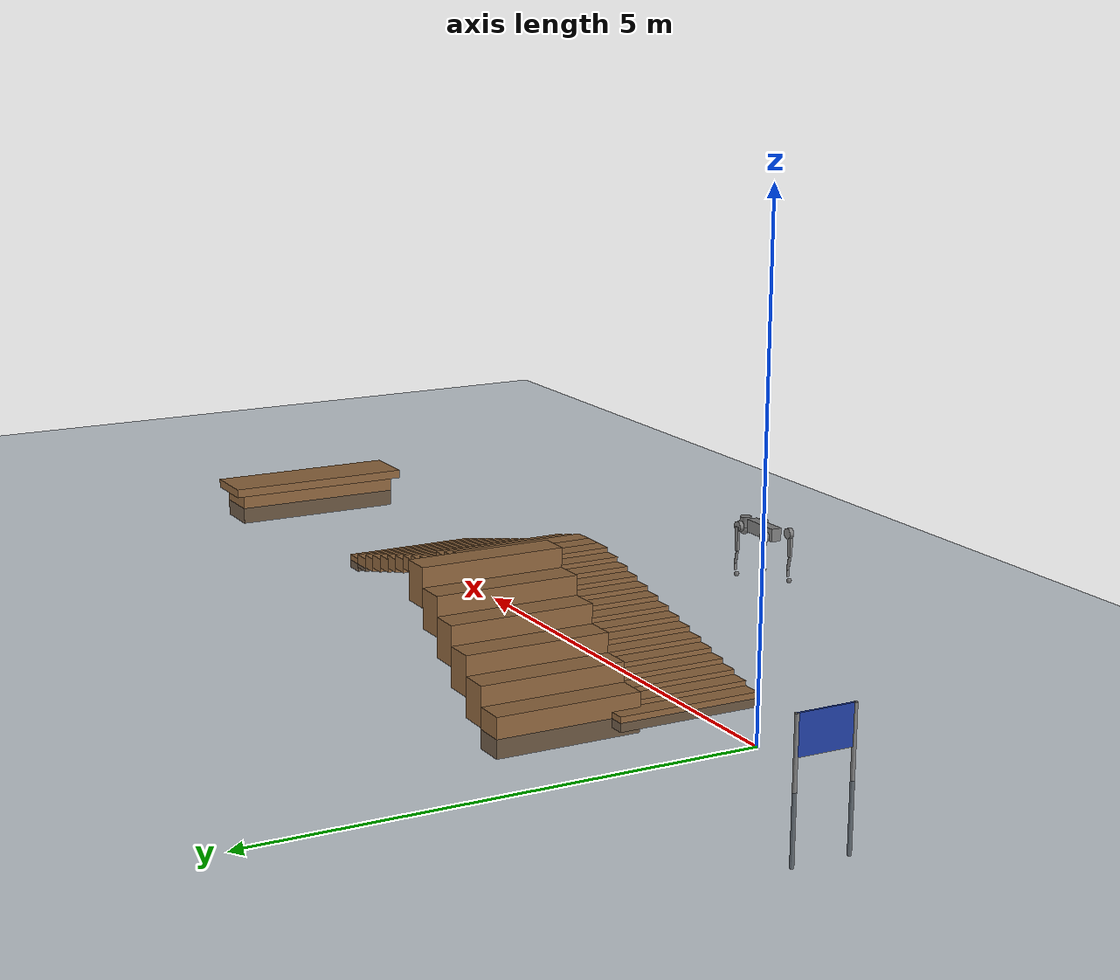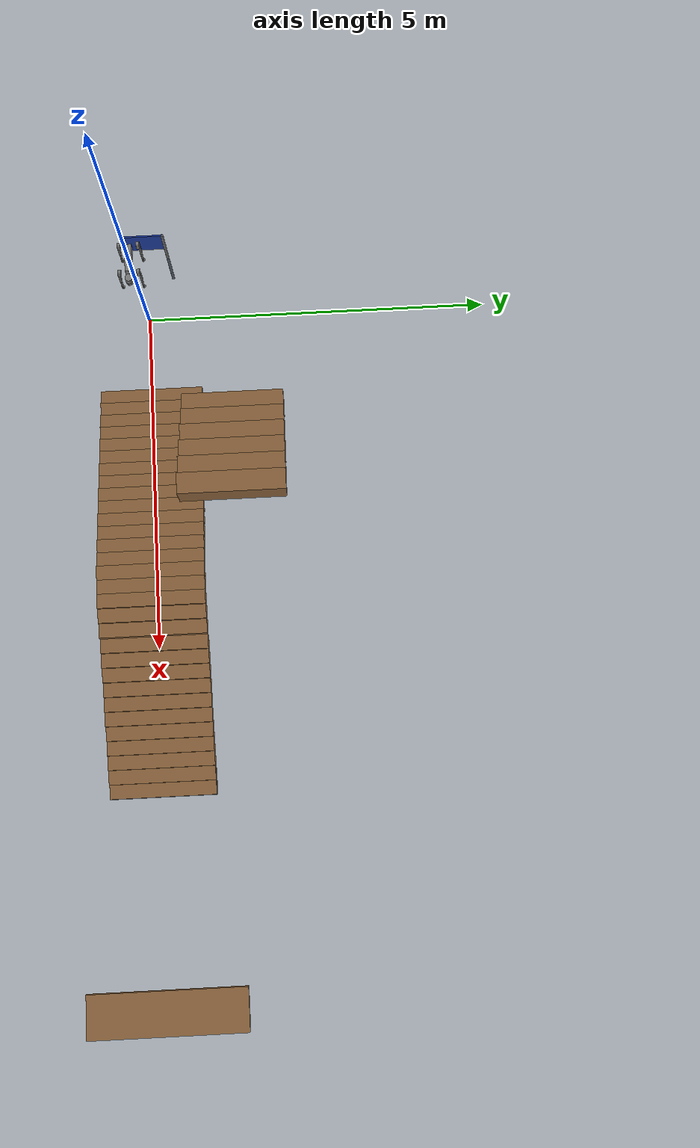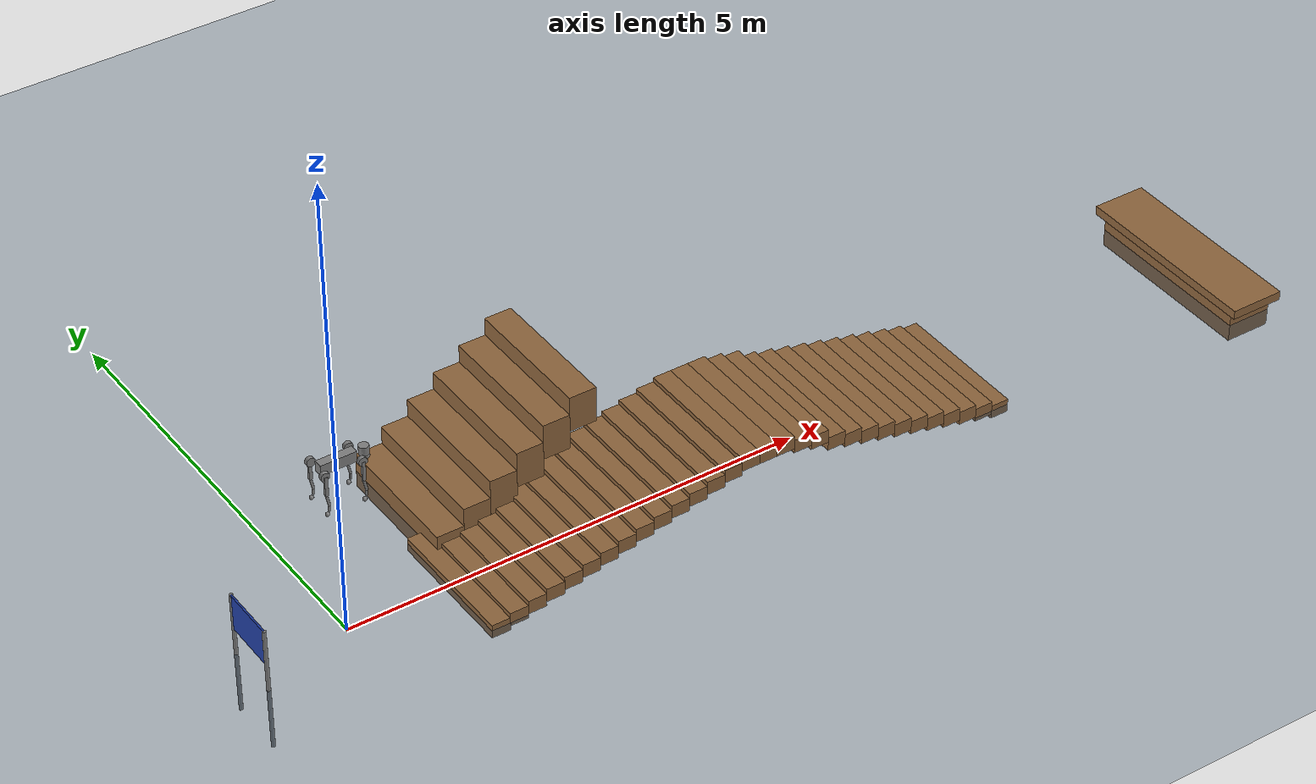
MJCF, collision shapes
<mujoco model="go2 scene">
  <include file="go2.xml" />

  <statistic center="0 0 0.1" extent="0.8" />

  <visual>
    <headlight diffuse="0.6 0.6 0.6" ambient="0.3 0.3 0.3" specular="0 0 0" />
    <rgba haze="0.15 0.25 0.35 1" />
    <global azimuth="-130" elevation="-20" />
  </visual>

  <asset>
    <texture type="skybox" builtin="gradient" rgb1="0.3 0.5 0.7" rgb2="0 0 0" width="512" height="3072" />
    <texture type="2d" name="groundplane" builtin="checker" mark="edge" rgb1="0.2 0.3 0.4" rgb2="0.1 0.2 0.3" markrgb="0.8 0.8 0.8" width="300" height="300" />
    <material name="groundplane" texture="groundplane" texuniform="true" texrepeat="5 5" reflectance="0.2" />
  <hfield name="perlin_hfield" size="5.0 5.0 0.6 0.6" file="../height_field.png" />
  <hfield name="image_hfield" size="1.0 1.0 0.02 0.1" file="../unitree_hfield.png" />
  <texture name="T_simpleWoodTable" type="cube" height="1" width="1" file="./metal1.png" />
  <material name="M_simpleWoodTable" texture="T_simpleWoodTable" rgba="0.8 0.8 0.8 1" shininess="0.2" reflectance="0.3" texuniform="false" />
  <texture name="Blue" type="cube" height="1" width="1" file="./blue.png" />
  <material name="Blue" texture="Blue" rgba="0.8 0.8 0.8 1" shininess="0.2" reflectance="0.3" texuniform="false" />

  <texture name="Wall" type="cube" height="10" width="10" file="./wall.png" />
  <material name="Wall" texture="Wall" rgba="0.8 0.8 0.8 1" shininess="0.2" reflectance="0.3" texuniform="false" />
  </asset>

  <worldbody>
    <light pos="0 0 1.5" dir="0 0 -1" directional="true" />
    <geom name="floor" size="0 0 0.05" type="plane" material="groundplane" />
    <geom pos="10.0 0.0 0.0" type="box" size="0.25 1.0 0.2" quat="1.0 0.0 0.0 0.0" material="M_simpleWoodTable" />
    <geom pos="10.0 0.0 0.2" type="box" size="0.3 1.1 0.05" quat="1.0 0.0 0.0 0.0" material="M_simpleWoodTable" />

    <geom pos="-1.0 0.0 0.5" type="box" size="0.01 0.3 0.2" quat="1.0 0.0 0.0 0.0" material="Blue" />
    <geom pos="-1.0 -0.3 0.0" type="cylinder" size="0.02 0.7 0.1" quat="1.0 0.0 0.0 0.0" />
    <geom pos="-1.0 0.3 0.0" type="cylinder" size="0.02 0.7 0.1" quat="1.0 0.0 0.0 0.0" />

  <!-- stairs diff-0.05 -->
  <geom pos="1.2 0.0 -0.025" type="box" size="0.1 0.75 0.075" quat="1.0 0.0 0.0 0.0" material="M_simpleWoodTable"/>
  <geom pos="1.4 0.0 0.025" type="box" size="0.1 0.75 0.075" quat="1.0 0.0 0.0 0.0" material="M_simpleWoodTable"/>
  <geom pos="1.6 0.0 0.075" type="box" size="0.1 0.75 0.075" quat="1.0 0.0 0.0 0.0" material="M_simpleWoodTable"/>
  <geom pos="1.8 0.0 0.125" type="box" size="0.1 0.75 0.075" quat="1.0 0.0 0.0 0.0" material="M_simpleWoodTable"/>
  <geom pos="2.0 0.0 0.175" type="box" size="0.1 0.75 0.075" quat="1.0 0.0 0.0 0.0" material="M_simpleWoodTable"/>
  <geom pos="2.2 0.0 0.225" type="box" size="0.1 0.75 0.075" quat="1.0 0.0 0.0 0.0" material="M_simpleWoodTable"/>
  <geom pos="2.4 0.0 0.275" type="box" size="0.1 0.75 0.075" quat="1.0 0.0 0.0 0.0" material="M_simpleWoodTable"/>
  <geom pos="2.6 0.0 0.325" type="box" size="0.1 0.75 0.075" quat="1.0 0.0 0.0 0.0" material="M_simpleWoodTable"/>
  <geom pos="2.8 0.0 0.375" type="box" size="0.1 0.75 0.075" quat="1.0 0.0 0.0 0.0" material="M_simpleWoodTable"/>
  <geom pos="3.0 0.0 0.425" type="box" size="0.1 0.75 0.075" quat="1.0 0.0 0.0 0.0" material="M_simpleWoodTable"/>
  <geom pos="3.2 0.0 0.475" type="box" size="0.1 0.75 0.075" quat="1.0 0.0 0.0 0.0" material="M_simpleWoodTable"/>
  <geom pos="3.4 0.0 0.525" type="box" size="0.1 0.75 0.075" quat="1.0 0.0 0.0 0.0" material="M_simpleWoodTable"/>
  <geom pos="3.6 0.0 0.575" type="box" size="0.1 0.75 0.075" quat="1.0 0.0 0.0 0.0" material="M_simpleWoodTable"/>
  <geom pos="3.8 0.0 0.625" type="box" size="0.1 0.75 0.075" quat="1.0 0.0 0.0 0.0" material="M_simpleWoodTable"/>
  <geom pos="4.0 0.0 0.675" type="box" size="0.1 0.75 0.075" quat="1.0 0.0 0.0 0.0" material="M_simpleWoodTable"/>
  <geom pos="4.2 0.0 0.675" type="box" size="0.1 0.75 0.075" quat="1.0 0.0 0.0 0.0" material="M_simpleWoodTable"/>
  <geom pos="4.4 0.0 0.675" type="box" size="0.1 0.75 0.075" quat="1.0 0.0 0.0 0.0" material="M_simpleWoodTable"/>
  <geom pos="4.6 0.0 0.625" type="box" size="0.1 0.75 0.075" quat="1.0 0.0 0.0 0.0" material="M_simpleWoodTable"/>
  <geom pos="4.8 0.0 0.575" type="box" size="0.1 0.75 0.075" quat="1.0 0.0 0.0 0.0" material="M_simpleWoodTable"/>
  <geom pos="7.0 0.0 -0.025" type="box" size="0.1 0.75 0.075" quat="1.0 0.0 0.0 0.0" material="M_simpleWoodTable"/>
  <geom pos="6.8 0.0 0.025" type="box" size="0.1 0.75 0.075" quat="1.0 0.0 0.0 0.0" material="M_simpleWoodTable"/>
  <geom pos="6.6 0.0 0.075" type="box" size="0.1 0.75 0.075" quat="1.0 0.0 0.0 0.0" material="M_simpleWoodTable"/>
  <geom pos="6.4 0.0 0.125" type="box" size="0.1 0.75 0.075" quat="1.0 0.0 0.0 0.0" material="M_simpleWoodTable"/>
  <geom pos="6.2 0.0 0.175" type="box" size="0.1 0.75 0.075" quat="1.0 0.0 0.0 0.0" material="M_simpleWoodTable"/>
  <geom pos="6.0 0.0 0.225" type="box" size="0.1 0.75 0.075" quat="1.0 0.0 0.0 0.0" material="M_simpleWoodTable"/>
  <geom pos="5.8 0.0 0.275" type="box" size="0.1 0.75 0.075" quat="1.0 0.0 0.0 0.0" material="M_simpleWoodTable"/>
  <geom pos="5.6 0.0 0.325" type="box" size="0.1 0.75 0.075" quat="1.0 0.0 0.0 0.0" material="M_simpleWoodTable"/>
  <geom pos="5.4 0.0 0.375" type="box" size="0.1 0.75 0.075" quat="1.0 0.0 0.0 0.0" material="M_simpleWoodTable"/>
  <geom pos="5.2 0.0 0.425" type="box" size="0.1 0.75 0.075" quat="1.0 0.0 0.0 0.0" material="M_simpleWoodTable"/>
  <geom pos="5.0 0.0 0.475" type="box" size="0.1 0.75 0.075" quat="1.0 0.0 0.0 0.0" material="M_simpleWoodTable"/>

  <geom pos="1.4 1.2 0.0" type="box" size="0.15 0.75 0.2" quat="1.0 0.0 0.0 0.0" material="M_simpleWoodTable"/>
  <geom pos="1.7 1.2 0.2" type="box" size="0.15 0.75 0.2" quat="1.0 0.0 0.0 0.0" material="M_simpleWoodTable"/>
  <geom pos="2.0 1.2 0.4" type="box" size="0.15 0.75 0.2" quat="1.0 0.0 0.0 0.0" material="M_simpleWoodTable"/>
  <geom pos="2.3 1.2 0.6" type="box" size="0.15 0.75 0.2" quat="1.0 0.0 0.0 0.0" material="M_simpleWoodTable"/>
  <geom pos="2.6 1.2 0.8" type="box" size="0.15 0.75 0.2" quat="1.0 0.0 0.0 0.0" material="M_simpleWoodTable"/>
  <geom pos="2.9 1.2 1.0" type="box" size="0.15 0.75 0.2" quat="1.0 0.0 0.0 0.0" material="M_simpleWoodTable"/>

  </worldbody>
</mujoco>

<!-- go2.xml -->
<mujoco model="go2">
  <compiler angle="radian" meshdir="assets" autolimits="true" />

  <option cone="elliptic" impratio="100" />

  <extension>
    <!-- 啟用 ray caster plugin -->
    <plugin plugin="mujoco.sensor.ray_caster"/>
  </extension>

  <default>
    <default class="go2">
      <geom friction="0.4" margin="0.001" condim="1"/>
      <joint axis="0 1 0" damping="0.1" armature="0.01" frictionloss="0.2"/>
      <motor ctrlrange="-23.7 23.7"/>
      <default class="abduction">
        <joint axis="1 0 0" range="-1.0472 1.0472"/>
      </default>
      <default class="hip">
        <default class="front_hip">
          <joint range="-1.5708 3.4907"/>
        </default>
        <default class="back_hip">
          <joint range="-0.5236 4.5379"/>
        </default>
      </default>
      <default class="knee">
        <joint range="-2.7227 -0.83776"/>
        <motor ctrlrange="-45.43 45.43"/>
      </default>
      <default class="visual">
        <geom type="mesh" contype="0" conaffinity="0" group="2"/>
      </default>
      <default class="collision">
        <geom group="3"/>
        <default class="foot">
          <geom size="0.022" pos="-0.002 0 -0.213" priority="1" condim="6"
            friction="0.8 0.02 0.01"/>
        </default>
      </default>
    </default>
  </default>

  <asset>
    <material name="metal" rgba=".9 .95 .95 1" />
    <material name="black" rgba="0 0 0 1" />
    <material name="white" rgba="1 1 1 1" />
    <material name="gray" rgba="0.671705 0.692426 0.774270 1" />

    <mesh file="base_0.obj" />
    <mesh file="base_1.obj" />
    <mesh file="base_2.obj" />
    <mesh file="base_3.obj" />
    <mesh file="base_4.obj" />
    <mesh file="hip_0.obj" />
    <mesh file="hip_1.obj" />
    <mesh file="thigh_0.obj" />
    <mesh file="thigh_1.obj" />
    <mesh file="thigh_mirror_0.obj" />
    <mesh file="thigh_mirror_1.obj" />
    <mesh file="calf_0.obj" />
    <mesh file="calf_1.obj" />
    <mesh file="calf_mirror_0.obj" />
    <mesh file="calf_mirror_1.obj" />
    <mesh file="foot.obj" />
  </asset>

  <worldbody>
    <body name="base_link" pos="0 0 2.0" childclass="go2">
      <inertial pos="0.021112 0 -0.005366" quat="-0.000543471 0.713435 -0.00173769 0.700719"
        mass="6.921"
        diaginertia="0.107027 0.0980771 0.0244531" />
      <freejoint />
      <geom mesh="base_0" material="black" class="visual" />
      <geom mesh="base_1" material="black" class="visual" />
      <geom mesh="base_2" material="black" class="visual" />
      <geom mesh="base_3" material="white" class="visual" />
      <geom mesh="base_4" material="gray" class="visual" />
      <geom size="0.1881 0.04675 0.057" type="box" class="collision" />
      <geom size="0.05 0.045" pos="0.285 0 0.01" type="cylinder" class="collision" />
      <geom size="0.047" pos="0.293 0 -0.06" class="collision" />
      <site name="imu" pos="-0.02557 0 0.04232" />
      <camera name="height_cam" pos="0 0 0" quat="1 0 0 0"/>
      <body name="FL_hip" pos="0.1934 0.0465 0">
        <inertial pos="-0.0054 0.00194 -0.000105" quat="0.497014 0.499245 0.505462 0.498237"
          mass="0.678"
          diaginertia="0.00088403 0.000596003 0.000479967" />
        <joint name="FL_hip_joint" class="abduction" />
        <geom mesh="hip_0" material="metal" class="visual" />
        <geom mesh="hip_1" material="gray" class="visual" />
        <geom size="0.046 0.02" pos="0 0.08 0" quat="1 1 0 0" type="cylinder" class="collision" />
        <body name="FL_thigh" pos="0 0.0955 0">
          <inertial pos="-0.00374 -0.0223 -0.0327" quat="0.829533 0.0847635 -0.0200632 0.551623"
            mass="1.152"
            diaginertia="0.00594973 0.00584149 0.000878787" />
          <joint name="FL_thigh_joint" class="front_hip" />
          <geom mesh="thigh_0" material="metal" class="visual" />
          <geom mesh="thigh_1" material="gray" class="visual" />
          <geom size="0.1065 0.01225 0.017" pos="0 0 -0.1065" quat="0.707107 0 0.707107 0"
            type="box" class="collision" />
          <body name="FL_calf" pos="0 0 -0.213">
            <inertial pos="0.00629595 -0.000622121 -0.141417"
              quat="0.710672 0.00154099 -0.00450087 0.703508"
              mass="0.241352" diaginertia="0.0014901 0.00146356 5.31397e-05" />
            <joint name="FL_calf_joint" class="knee" />
            <geom mesh="calf_0" material="gray" class="visual" />
            <geom mesh="calf_1" material="black" class="visual" />
            <geom size="0.012 0.06" pos="0.008 0 -0.06" quat="0.994493 0 -0.104807 0"
              type="cylinder" class="collision" />
            <geom size="0.011 0.0325" pos="0.02 0 -0.148" quat="0.999688 0 0.0249974 0"
              type="cylinder" class="collision" />
            <geom pos="0 0 -0.213" mesh="foot" class="visual" material="black" />
            <geom name="FL" class="foot" />
            <body name="FL_foot" pos="0 0 -0.213" />
          </body>
        </body>
      </body>
      <body name="FR_hip" pos="0.1934 -0.0465 0">
        <inertial pos="-0.0054 -0.00194 -0.000105" quat="0.498237 0.505462 0.499245 0.497014"
          mass="0.678"
          diaginertia="0.00088403 0.000596003 0.000479967" />
        <joint name="FR_hip_joint" class="abduction" />
        <geom mesh="hip_0" material="metal" class="visual" quat="4.63268e-05 1 0 0" />
        <geom mesh="hip_1" material="gray" class="visual" quat="4.63268e-05 1 0 0" />
        <geom size="0.046 0.02" pos="0 -0.08 0" quat="0.707107 0.707107 0 0" type="cylinder"
          class="collision" />
        <body name="FR_thigh" pos="0 -0.0955 0">
          <inertial pos="-0.00374 0.0223 -0.0327" quat="0.551623 -0.0200632 0.0847635 0.829533"
            mass="1.152"
            diaginertia="0.00594973 0.00584149 0.000878787" />
          <joint name="FR_thigh_joint" class="front_hip" />
          <geom mesh="thigh_mirror_0" material="metal" class="visual" />
          <geom mesh="thigh_mirror_1" material="gray" class="visual" />
          <geom size="0.1065 0.01225 0.017" pos="0 0 -0.1065" quat="0.707107 0 0.707107 0"
            type="box" class="collision" />
          <body name="FR_calf" pos="0 0 -0.213">
            <inertial pos="0.00629595 0.000622121 -0.141417"
              quat="0.703508 -0.00450087 0.00154099 0.710672"
              mass="0.241352" diaginertia="0.0014901 0.00146356 5.31397e-05" />
            <joint name="FR_calf_joint" class="knee" />
            <geom mesh="calf_mirror_0" material="gray" class="visual" />
            <geom mesh="calf_mirror_1" material="black" class="visual" />
            <geom size="0.013 0.06" pos="0.01 0 -0.06" quat="0.995004 0 -0.0998334 0"
              type="cylinder" class="collision" />
            <geom size="0.011 0.0325" pos="0.02 0 -0.148" quat="0.999688 0 0.0249974 0"
              type="cylinder" class="collision" />
            <geom pos="0 0 -0.213" mesh="foot" class="visual" material="black" />
            <geom name="FR" class="foot" />
            <body name="FR_foot" pos="0 0 -0.213" />
          </body>
        </body>
      </body>
      <body name="RL_hip" pos="-0.1934 0.0465 0">
        <inertial pos="0.0054 0.00194 -0.000105" quat="0.505462 0.498237 0.497014 0.499245"
          mass="0.678"
          diaginertia="0.00088403 0.000596003 0.000479967" />
        <joint name="RL_hip_joint" class="abduction" />
        <geom mesh="hip_0" material="metal" class="visual" quat="4.63268e-05 0 1 0" />
        <geom mesh="hip_1" material="gray" class="visual" quat="4.63268e-05 0 1 0" />
        <geom size="0.046 0.02" pos="0 0.08 0" quat="0.707107 0.707107 0 0" type="cylinder"
          class="collision" />
        <body name="RL_thigh" pos="0 0.0955 0">
          <inertial pos="-0.00374 -0.0223 -0.0327" quat="0.829533 0.0847635 -0.0200632 0.551623"
            mass="1.152"
            diaginertia="0.00594973 0.00584149 0.000878787" />
          <joint name="RL_thigh_joint" class="back_hip" />
          <geom mesh="thigh_0" material="metal" class="visual" />
          <geom mesh="thigh_1" material="gray" class="visual" />
          <geom size="0.1065 0.01225 0.017" pos="0 0 -0.1065" quat="0.707107 0 0.707107 0"
            type="box" class="collision" />
          <body name="RL_calf" pos="0 0 -0.213">
            <inertial pos="0.00629595 -0.000622121 -0.141417"
              quat="0.710672 0.00154099 -0.00450087 0.703508"
              mass="0.241352" diaginertia="0.0014901 0.00146356 5.31397e-05" />
            <joint name="RL_calf_joint" class="knee" />
            <geom mesh="calf_0" material="gray" class="visual" />
            <geom mesh="calf_1" material="black" class="visual" />
            <geom size="0.013 0.06" pos="0.01 0 -0.06" quat="0.995004 0 -0.0998334 0"
              type="cylinder" class="collision" />
            <geom size="0.011 0.0325" pos="0.02 0 -0.148" quat="0.999688 0 0.0249974 0"
              type="cylinder" class="collision" />
            <geom pos="0 0 -0.213" mesh="foot" class="visual" material="black" />
            <geom name="RL" class="foot" />
            <body name="RL_foot" pos="0 0 -0.213" />
          </body>
        </body>
      </body>
      <body name="RR_hip" pos="-0.1934 -0.0465 0">
        <inertial pos="0.0054 -0.00194 -0.000105" quat="0.499245 0.497014 0.498237 0.505462"
          mass="0.678"
          diaginertia="0.00088403 0.000596003 0.000479967" />
        <joint name="RR_hip_joint" class="abduction" />
        <geom mesh="hip_0" material="metal" class="visual"
          quat="2.14617e-09 4.63268e-05 4.63268e-05 -1" />
        <geom mesh="hip_1" material="gray" class="visual"
          quat="2.14617e-09 4.63268e-05 4.63268e-05 -1" />
        <geom size="0.046 0.02" pos="0 -0.08 0" quat="0.707107 0.707107 0 0" type="cylinder"
          class="collision" />
        <body name="RR_thigh" pos="0 -0.0955 0">
          <inertial pos="-0.00374 0.0223 -0.0327" quat="0.551623 -0.0200632 0.0847635 0.829533"
            mass="1.152"
            diaginertia="0.00594973 0.00584149 0.000878787" />
          <joint name="RR_thigh_joint" class="back_hip" />
          <geom mesh="thigh_mirror_0" material="metal" class="visual" />
          <geom mesh="thigh_mirror_1" material="gray" class="visual" />
          <geom size="0.1065 0.01225 0.017" pos="0 0 -0.1065" quat="0.707107 0 0.707107 0"
            type="box" class="collision" />
          <body name="RR_calf" pos="0 0 -0.213">
            <inertial pos="0.00629595 0.000622121 -0.141417"
              quat="0.703508 -0.00450087 0.00154099 0.710672"
              mass="0.241352" diaginertia="0.0014901 0.00146356 5.31397e-05" />
            <joint name="RR_calf_joint" class="knee" />
            <geom mesh="calf_mirror_0" material="gray" class="visual" />
            <geom mesh="calf_mirror_1" material="black" class="visual" />
            <geom size="0.013 0.06" pos="0.01 0 -0.06" quat="0.995004 0 -0.0998334 0"
              type="cylinder" class="collision" />
            <geom size="0.011 0.0325" pos="0.02 0 -0.148" quat="0.999688 0 0.0249974 0"
              type="cylinder" class="collision" />
            <geom pos="0 0 -0.213" mesh="foot" class="visual" material="black" />
            <geom name="RR" class="foot" />
            <body name="RR_foot" pos="0 0 -0.213" />
          </body>
        </body>
      </body>
    </body>
  </worldbody>

  <actuator>
    <motor class="abduction" name="FR_hip" joint="FR_hip_joint" />
    <motor class="hip" name="FR_thigh" joint="FR_thigh_joint" />
    <motor class="knee" name="FR_calf" joint="FR_calf_joint" />
    <motor class="abduction" name="FL_hip" joint="FL_hip_joint" />
    <motor class="hip" name="FL_thigh" joint="FL_thigh_joint" />
    <motor class="knee" name="FL_calf" joint="FL_calf_joint" />
    <motor class="abduction" name="RR_hip" joint="RR_hip_joint" />
    <motor class="hip" name="RR_thigh" joint="RR_thigh_joint" />
    <motor class="knee" name="RR_calf" joint="RR_calf_joint" />
    <motor class="abduction" name="RL_hip" joint="RL_hip_joint" />
    <motor class="hip" name="RL_thigh" joint="RL_thigh_joint" />
    <motor class="knee" name="RL_calf" joint="RL_calf_joint" />
  </actuator>

  <sensor>
    <jointpos name="FR_hip_pos" joint="FR_hip_joint" />
    <jointpos name="FR_thigh_pos" joint="FR_thigh_joint" />
    <jointpos name="FR_calf_pos" joint="FR_calf_joint" />
    <jointpos name="FL_hip_pos" joint="FL_hip_joint" />
    <jointpos name="FL_thigh_pos" joint="FL_thigh_joint" />
    <jointpos name="FL_calf_pos" joint="FL_calf_joint" />
    <jointpos name="RR_hip_pos" joint="RR_hip_joint" />
    <jointpos name="RR_thigh_pos" joint="RR_thigh_joint" />
    <jointpos name="RR_calf_pos" joint="RR_calf_joint" />
    <jointpos name="RL_hip_pos" joint="RL_hip_joint" />
    <jointpos name="RL_thigh_pos" joint="RL_thigh_joint" />
    <jointpos name="RL_calf_pos" joint="RL_calf_joint" />

    <jointvel name="FR_hip_vel" joint="FR_hip_joint" />
    <jointvel name="FR_thigh_vel" joint="FR_thigh_joint" />
    <jointvel name="FR_calf_vel" joint="FR_calf_joint" />
    <jointvel name="FL_hip_vel" joint="FL_hip_joint" />
    <jointvel name="FL_thigh_vel" joint="FL_thigh_joint" />
    <jointvel name="FL_calf_vel" joint="FL_calf_joint" />
    <jointvel name="RR_hip_vel" joint="RR_hip_joint" />
    <jointvel name="RR_thigh_vel" joint="RR_thigh_joint" />
    <jointvel name="RR_calf_vel" joint="RR_calf_joint" />
    <jointvel name="RL_hip_vel" joint="RL_hip_joint" />
    <jointvel name="RL_thigh_vel" joint="RL_thigh_joint" />
    <jointvel name="RL_calf_vel" joint="RL_calf_joint" />

    <jointactuatorfrc name="FR_hip_torque" joint="FR_hip_joint" noise="0.01" />
    <jointactuatorfrc name="FR_thigh_torque" joint="FR_thigh_joint" noise="0.01" />
    <jointactuatorfrc name="FR_calf_torque" joint="FR_calf_joint" noise="0.01" />
    <jointactuatorfrc name="FL_hip_torque" joint="FL_hip_joint" noise="0.01" />
    <jointactuatorfrc name="FL_thigh_torque" joint="FL_thigh_joint" noise="0.01" />
    <jointactuatorfrc name="FL_calf_torque" joint="FL_calf_joint" noise="0.01" />
    <jointactuatorfrc name="RR_hip_torque" joint="RR_hip_joint" noise="0.01" />
    <jointactuatorfrc name="RR_thigh_torque" joint="RR_thigh_joint" noise="0.01" />
    <jointactuatorfrc name="RR_calf_torque" joint="RR_calf_joint" noise="0.01" />
    <jointactuatorfrc name="RL_hip_torque" joint="RL_hip_joint" noise="0.01" />
    <jointactuatorfrc name="RL_thigh_torque" joint="RL_thigh_joint" noise="0.01" />
    <jointactuatorfrc name="RL_calf_torque" joint="RL_calf_joint" noise="0.01" />

    <framequat name="imu_quat" objtype="site" objname="imu" />
    <gyro name="imu_gyro" site="imu" />
    <accelerometer name="imu_acc" site="imu" />

    <framepos name="frame_pos" objtype="site" objname="imu" />
    <framelinvel name="frame_vel" objtype="site" objname="imu" />
    <!-- 這個就是之後 RL 會用到的「高度掃描器」 -->
    <plugin name="height_scanner"
            plugin="mujoco.sensor.ray_caster"
            objtype="camera" objname="height_cam">

      <config key="type" value="yaw" />
      <config key="resolution" value="0.1" />
      <config key="size" value="1.0 1.6" />
      <config key="dis_range" value="0.01 6" />

      <config key="compute_time_log" value="1" />

      <config key="draw_hip_point" value="1 0.02" /> -->

      <config key="sensor_data_types" value="data" />
      <config key="noise_type" value="uniform" />
      <config key="noise_cfg" value="0 0 1" />

    </plugin>
  </sensor>

  <keyframe>
    <key name="home" qpos="17.2 -5.4 1.3 1 0 0 0 0 0.9 -1.8 0 0.9 -1.8 0 0.9 -1.8 0 0.9 -1.8"
      ctrl="0 0.9 -1.8 0 0.9 -1.8 0 0.9 -1.8 0 0.9 -1.8" />
  </keyframe>
</mujoco>
